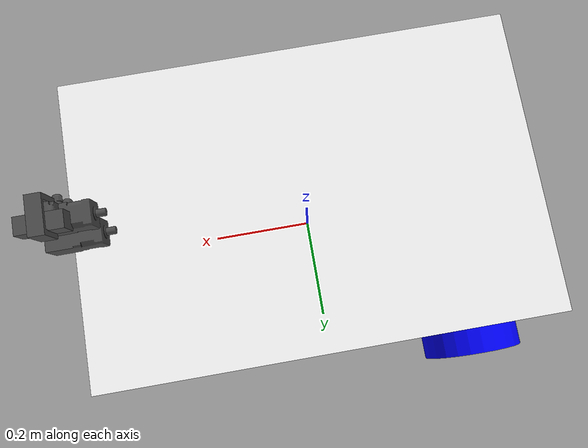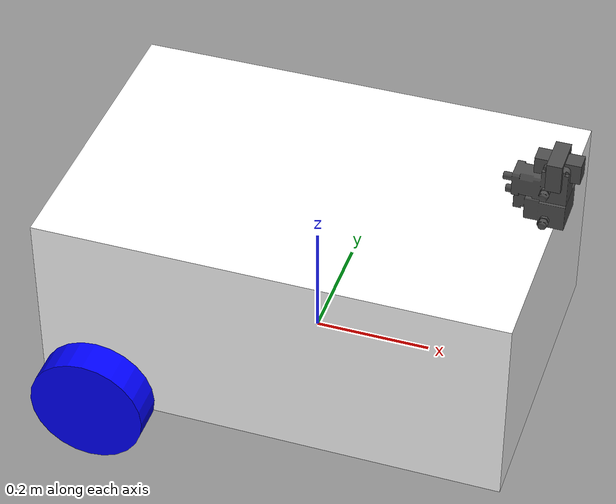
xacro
<?xml version='1.0'?>

<robot name="robuter2" xmlns:xacro="http://www.ros.org/wiki/xacro">

  <xacro:property name="cameraSize" value="0.05"/>
  <xacro:property name="cameraMass" value="0.1"/>
  <xacro:property name="pi" value="3.1415926535897931" />
  <xacro:property name="pi2" value="1.5708" />

  <xacro:include filename="$(find mybot_description)/urdf/mybot.gazebo" />
  <xacro:include filename="$(find mybot_description)/urdf/materials.xacro" />
  <xacro:include filename="$(find mybot_description)/urdf/macros.xacro" />
  <xacro:include filename="$(find flir_ptu_description)/urdf/d46.urdf.xacro" />
   <xacro:include filename="$(find pointgrey_camera_description)/urdf/pointgrey_flea3.urdf.xacro" />

<!--NOTE: base_link was previously called chassis, check for this in case of error/-->
  <link name='chassis'>
    <pose>0 0 0.1 0 0 0</pose>

    <inertial>
      <mass value="15.0"/>
      <origin xyz="0.0 0 0.1" rpy=" 0 0 0"/>
      <inertia
          ixx="0.1" ixy="0" ixz="0"
          iyy="0.1" iyz="0"
          izz="0.1"
      />
    </inertial>

    <collision name='collision'>
      <geometry>
        <box size=".8 .535 .1"/>  <!--this alters the base/-->
      </geometry>
    </collision>

    <visual name='chassis_visual'>
      <origin xyz="0 0 0.15" rpy=" 0 0 0"/>
      <geometry>
        <box size=".8 .535 .35"/>
      </geometry>
      <material name="white">
        <color rgba="1 1 1 1"/>
      </material>
    </visual>

    <collision name='caster_front_collision'>

      <origin xyz="0.3 0 -0.05" rpy=" 0 0 0"/>
      <geometry>
        <sphere radius="0.05"/>
      </geometry>
      <surface>
        <friction>
          <ode>
            <mu>0</mu>
            <mu2>0</mu2>
            <slip1>1.0</slip1>
            <slip2>1.0</slip2>
          </ode>
        </friction>
      </surface>
    </collision>

    <visual name='caster_front_visual'>
      <origin xyz="0.3 0 -0.05" rpy=" 0 0 0"/>
      <geometry>
        <sphere radius="0.05"/>
      </geometry>
    </visual>

  </link>

  <link name="left_wheel">
    <!--origin xyz="0.1 0.13 0.1" rpy="0 1.5707 1.5707"/-->
    <collision name="collision">
      <origin xyz="0 0 0" rpy="0 ${pi2} ${pi2}"/>
      <geometry>
        <cylinder radius="0.1" length="0.06"/>
      </geometry>
    </collision>
    <visual name="left_wheel_visual">
      <origin xyz="0 0 0" rpy="0 ${pi2} ${pi2}"/>
      <geometry>
        <cylinder radius="0.1" length="0.06"/>
      </geometry>
       <material name="blue">
        <color rgba="0 0 1 1"/>
      </material>
    </visual>
    <inertial>
      <origin xyz="0 0 0" rpy="0 ${pi2} ${pi2}"/>
      <mass value="5"/>
      <inertia
        ixx=".1" ixy="0.0" ixz="0.0"
        iyy=".1" iyz="0.0"
        izz=".1"/>
    </inertial>
  </link>

  <link name="right_wheel">
    <!--origin xyz="0.1 -0.13 0.1" rpy="0 1.5707 1.5707"/-->
    <collision name="collision">
      <origin xyz="0 0 0" rpy="0 ${pi2} ${pi2}"/>
      <geometry>
        <cylinder radius="0.1" length="0.06"/>
      </geometry>
    </collision>
    <visual name="right_wheel_visual">
      <origin xyz="0 0 0" rpy="0 ${pi2} ${pi2}"/>
      <geometry>
        <cylinder radius="0.1" length="0.06"/>
      </geometry>
      <material name="blue">
        <color rgba="0 0 1 1"/>
      </material>
    </visual>
    <inertial>
      <origin xyz="0 0 0" rpy="0 ${pi2} ${pi2}"/>
      <mass value="5"/>
      <inertia
        ixx=".1" ixy="0.0" ixz="0.0"
        iyy=".1" iyz="0.0"
        izz=".1"/>
    </inertial>
  </link>

  <joint type="continuous" name="left_wheel_hinge">
    <origin xyz="-0.3 0.3 0" rpy="0 0 0"/>
    <!--origin xyz="0.1 0.13 0" rpy="0 1.5707 1.5707"/-->
    <child link="left_wheel"/>
    <parent link="chassis"/>
    <axis xyz="0 1 0" rpy="0 0 0"/>
    <limit effort="10000" velocity="1000"/>
    <joint_properties damping="1.0" friction="1.0"/>
  </joint>

  <joint type="continuous" name="right_wheel_hinge">
    <origin xyz="-0.3 -0.3 0" rpy="0 0 0"/>
    <!--origin xyz="0.1 -0.13 0" rpy="0 1.5707 1.5707"/-->
    <child link="right_wheel"/>
    <parent link="chassis"/>
    <axis xyz="0 1 0" rpy="0 0 0"/>
    <limit effort="10000" velocity="1000"/>
    <joint_properties damping="1.0" friction="1.0"/>
  </joint>

  <!-- PTU UNIT -->
  <!-- Create a fixed joint to connect the PTU to the rest of the robot -->
  <ptu_d46 name="ptu" />
  <joint name="base_to_ptu_base" type="fixed">
    <parent link="chassis"/>
    <child link="ptu_base_link"/>
    <origin xyz="0.4 0 0.35"/>
</joint>

<!-- FLEA CAMERA -->
<pointgrey_flea3 frame="flea3" name="flea3" camera_x="0.0754" camera_y="0.029" camera_z="0.035" camera_mass="0.085"
                   hfov="1.0471975512" fps="60" width="640" height="512"/>

  <joint name="world_camera_joint" type="fixed">
    <origin xyz="0 0 0.100" rpy="0 0 0" />
    <parent link="ptu_pan_link" />
    <child link="flea3" />
</joint>

</robot>

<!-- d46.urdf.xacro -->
<robot name="ptu_d46" xmlns:xacro="http://www.ros.org/wiki/xacro">
  <xacro:property name="pan_velocity" value="1.0" />
  <xacro:property name="pan_range" value="2.775" />
  <xacro:property name="tilt_velocity" value="1.0" />
  <xacro:property name="tilt_up_range" value="0.52" />
  <xacro:property name="tilt_down_range" value="0.82" />
  <xacro:property name="joint_effort" value="30" />

  <xacro:macro name="d46_transmission" params="name">
    <transmission name="${name}_trans">
      <type>transmission_interface/SimpleTransmission</type>
      <joint name="${name}">
        <hardwareInterface>hardware_interface/VelocityJointInterface</hardwareInterface>
      </joint>
      <actuator name="${name}_motor">
          <mechanicalReduction>1</mechanicalReduction>
      </actuator>
    </transmission>
  </xacro:macro>

  <xacro:macro name="ptu_d46" params="name pan_offset:=0.0">
    <link name="${name}_tilt_link">
      <inertial>
        <mass value="0.65" />
        <origin xyz="0 0 0" rpy="0 0 0" />
        <inertia ixx="0.0001" ixy="0" ixz="0" iyy="0.0001" iyz="0" izz="0.0001" />
      </inertial>
      <visual>
        <material name="ptu_body_color">
          <color rgba="0.3 0.3 0.3 1.0" />
        </material>
        <geometry>
          <mesh filename="package://flir_ptu_description/meshes/flir-ptu-tilt-motor.stl"/>
        </geometry>
      </visual>
      <collision>
        <geometry>
          <mesh filename="package://flir_ptu_description/meshes/flir-ptu-tilt-motor-collision.stl"/>
        </geometry>
      </collision>
    </link>
    <gazebo reference="${name}_tilt_link">
        <material>Gazebo/DarkGrey</material>
    </gazebo>

    <link name="${name}_pan_link">
      <inertial>
        <mass value="0.65" />
        <origin xyz="0 0 0" rpy="0 0 0" />
        <inertia ixx="0.0001" ixy="0" ixz="0" iyy="0.0001" iyz="0" izz="0.0001" />
      </inertial>
      <visual>
        <material name="ptu_body_color">
          <color rgba="0.3 0.3 0.3 1.0" />
        </material>
        <geometry>
          <mesh filename="package://flir_ptu_description/meshes/flir-ptu-pan-motor.stl"/>
        </geometry>
      </visual>
      <collision>
        <geometry>
          <mesh filename="package://flir_ptu_description/meshes/flir-ptu-pan-motor-collision.stl"/>
        </geometry>
      </collision>
    </link>
    <gazebo reference="${name}_pan_link">
        <material>Gazebo/DarkGrey</material>
    </gazebo>

    <link name="${name}_base_link">
       <inertial>
            <mass value="2e-06"/>
            <inertia ixx="1.1e-09" ixy="0" ixz="0" iyy="1.1e-09" iyz="0" izz="1.1e-09"/>
        </inertial>
    </link>
    <link name="${name}_tilted_link">
      <visual>
        <material name="ptu_body_color">
          <color rgba="0.3 0.3 0.3 1.0" />
        </material>
        <geometry>
          <mesh filename="package://flir_ptu_description/meshes/flir-ptu-camera-mount.stl"/>
        </geometry>
      </visual>
      <collision>
        <geometry>
          <mesh filename="package://flir_ptu_description/meshes/flir-ptu-camera-mount.stl"/>
        </geometry>
      </collision>
    </link>
    <link name="${name}_mount_link">
        <inertial>
            <mass value="2e-06"/>
            <inertia ixx="1.1e-09" ixy="0" ixz="0" iyy="1.1e-09" iyz="0" izz="1.1e-09"/>
        </inertial>
    </link>

    <joint name="${name}_base" type="fixed">
      <parent link="${name}_base_link"/>
      <child link="${name}_pan_link"/>
      <origin xyz="0 0 0"/>
    </joint>

    <!-- The pan joint -->
    <joint name="${name}_pan" type="revolute">
      <parent link="${name}_pan_link" />
      <origin xyz="0 -0.00955 0.046774" rpy="-1.5708 0 ${pan_offset}" />
      <child link="${name}_tilt_link" />
      <axis xyz="0 -1 0" rpy="3.14159 0 0" />
      <limit lower="${-pan_range}" upper="${pan_range}"
             effort="${joint_effort}" velocity="${pan_velocity}" />
    </joint>

    <xacro:d46_transmission name="${name}_pan" />

    <!-- The tilt joint -->
    <joint name="${name}_tilt" type="revolute">
      <parent link="${name}_tilt_link" />
      <origin xyz="0 -0.043713 0" rpy="-1.5708 0 0" />
      <child link="${name}_tilted_link" />
      <axis xyz="0 1 0" />
      <limit lower="${-tilt_down_range}" upper="${tilt_up_range}"
             effort="${joint_effort}" velocity="${tilt_velocity}" />
    </joint>

    <xacro:d46_transmission name="${name}_tilt" />

    <!-- Fixed joint to provide a convenient attachment point for accessories. -->
    <joint name="${name}_mount" type="fixed">
      <parent link="${name}_tilted_link"/>
      <child link="${name}_mount_link"/>
      <origin xyz="0 0 -0.039116" rpy="3.1416 0 0" />
    </joint>

    <gazebo>
      <plugin filename="gz-sim-joint-position-controller-system"
              name="gz::sim::systems::JointPositionController">
        <joint_name>${name}_pan</joint_name>
        <topic>${name}/cmd_pan</topic>
        <p_gain>5.0</p_gain>
        <i_gain>0.1</i_gain>
        <d_gain>0.5</d_gain>
        <i_max>1.0</i_max>
        <i_min>-1.0</i_min>
        <cmd_max>30.0</cmd_max>
        <cmd_min>-30.0</cmd_min>
      </plugin>
      <plugin filename="gz-sim-joint-position-controller-system"
              name="gz::sim::systems::JointPositionController">
        <joint_name>${name}_tilt</joint_name>
        <topic>${name}/cmd_tilt</topic>
        <p_gain>5.0</p_gain>
        <i_gain>0.1</i_gain>
        <d_gain>0.5</d_gain>
        <i_max>1.0</i_max>
        <i_min>-1.0</i_min>
        <cmd_max>30.0</cmd_max>
        <cmd_min>-30.0</cmd_min>
      </plugin>
      <plugin filename="gz-sim-joint-state-publisher-system"
              name="gz::sim::systems::JointStatePublisher">
        <joint_name>${name}_pan</joint_name>
        <joint_name>${name}_tilt</joint_name>
        <topic>${name}/joint_states</topic>
      </plugin>
    </gazebo>

  </xacro:macro>
</robot>

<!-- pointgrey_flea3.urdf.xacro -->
<robot xmlns:xacro="http://www.ros.org/wiki/xacro" name="pointgrey_flea3">
  <!-- camera_{x,y,z,mass} are they physical properties of the camera since
       flea3's can have different physical footprints.  -->
  <xacro:macro name="pointgrey_flea3"
    params="frame:=camera name:=camera camera_x:=0.0754 camera_y:=0.029 camera_z:=0.035 camera_mass:=0.085
             hfov:=1.0471975512 fps:=120 width:=1272 height:=1016 format:=R8G8B8 near:=0.5 far:=300">

    <link name="${frame}">
      <inertial>
        <mass value="${camera_mass}" />
        <inertia ixx="1e-6" ixy="0" ixz="0" iyy="1e-6" iyz="0" izz="1e-6" />
      </inertial>
      <visual>
        <origin xyz="0 0 0" rpy="0 0 0" />
        <geometry>
          <box size="${camera_x} ${camera_y} ${camera_z}"/>
        </geometry>
        <material name="dark_grey" />
      </visual>
      <collision>
        <origin xyz="0 0 0" rpy="0 0 0" />
        <geometry>
          <box size="${camera_x} ${camera_y} ${camera_z}" />
        </geometry>
      </collision>
    </link>

    <link name="${frame}_optical" />

    <joint name="${frame}_optical_joint" type="fixed">
      <origin xyz="0 0 0" rpy="-1.570796 0 -1.570796" />
      <parent link="${frame}" />
      <child link="${frame}_optical" />
    </joint>

    <!-- Gazebo -->
    <gazebo reference="${frame}_optical">
      <material>Gazebo/Grey</material>
      <sensor type="camera" name="${name}">
        <update_rate>${fps}</update_rate>
        <camera name="${name}">
          <pose>0 0 0 0 -1.5707 1.5707</pose>
          <horizontal_fov>${hfov}</horizontal_fov>
          <image>
            <width>${width}</width>
            <height>${height}</height>
            <format>${format}</format>
          </image>
          <clip>
            <near>${near}</near>
            <far>${far}</far>
          </clip>
          <noise>
            <type>gaussian</type>
            <mean>0.0</mean>
            <stddev>0.007</stddev>
          </noise>
        </camera>

        <plugin name="camera_controller" filename="libgazebo_ros_camera.so">
          <alwaysOn>true</alwaysOn>
          <updateRate>${fps}</updateRate>
          <cameraName>${name}</cameraName>
          <imageTopicName>image_raw</imageTopicName>
          <cameraInfoTopicName>camera_info</cameraInfoTopicName>
          <frameName>${frame}_optical</frameName>
          <hackBaseline>0.07</hackBaseline>
          <distortionK1>0.0</distortionK1>
          <distortionK2>0.0</distortionK2>
          <distortionK3>0.0</distortionK3>
          <distortionT1>0.0</distortionT1>
          <distortionT2>0.0</distortionT2>
        </plugin>
      </sensor>
    </gazebo>
  </xacro:macro>
</robot>
